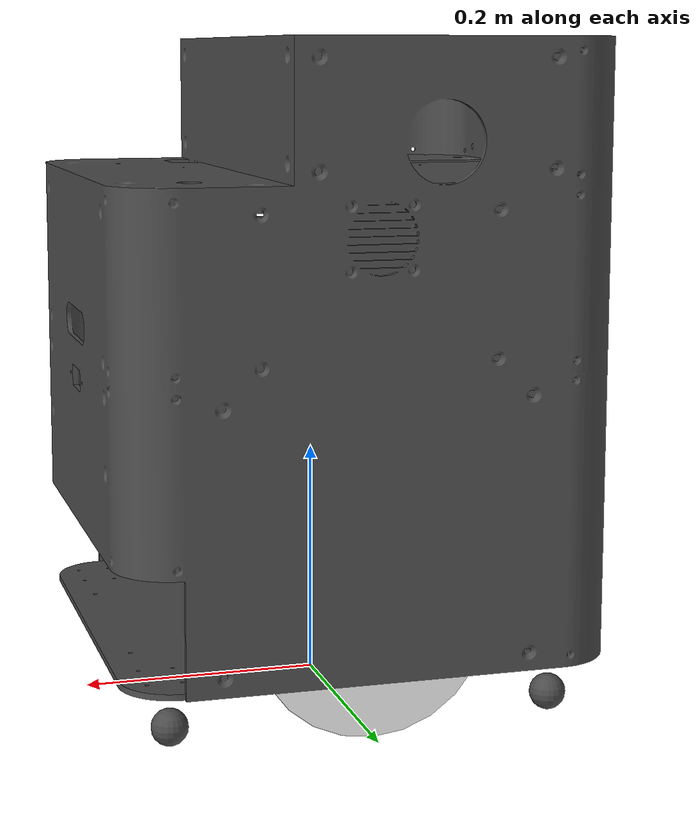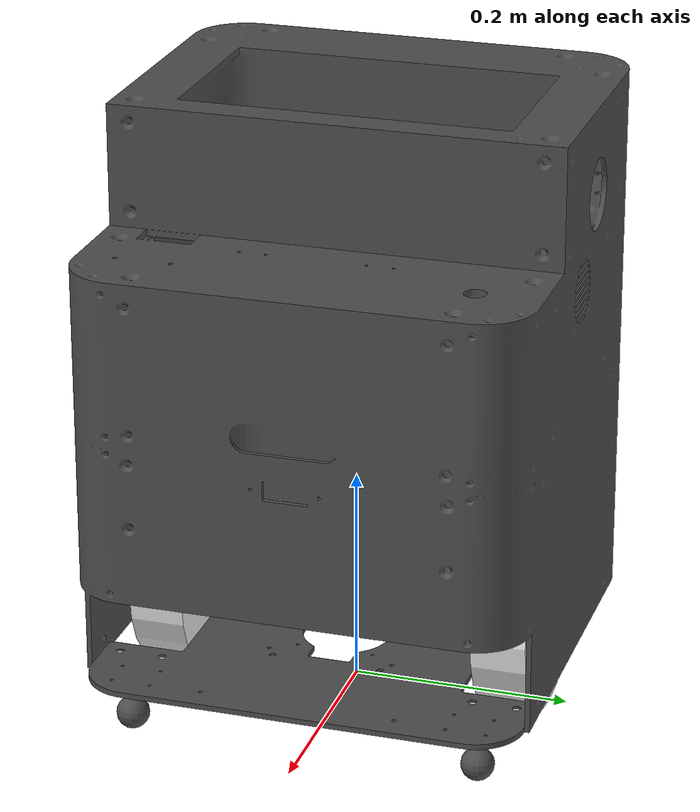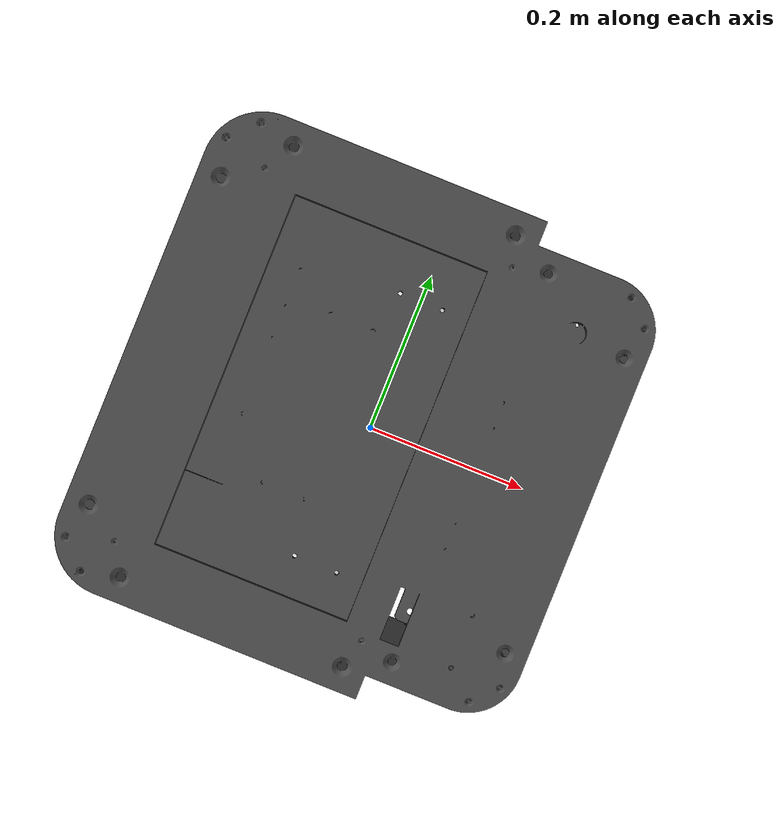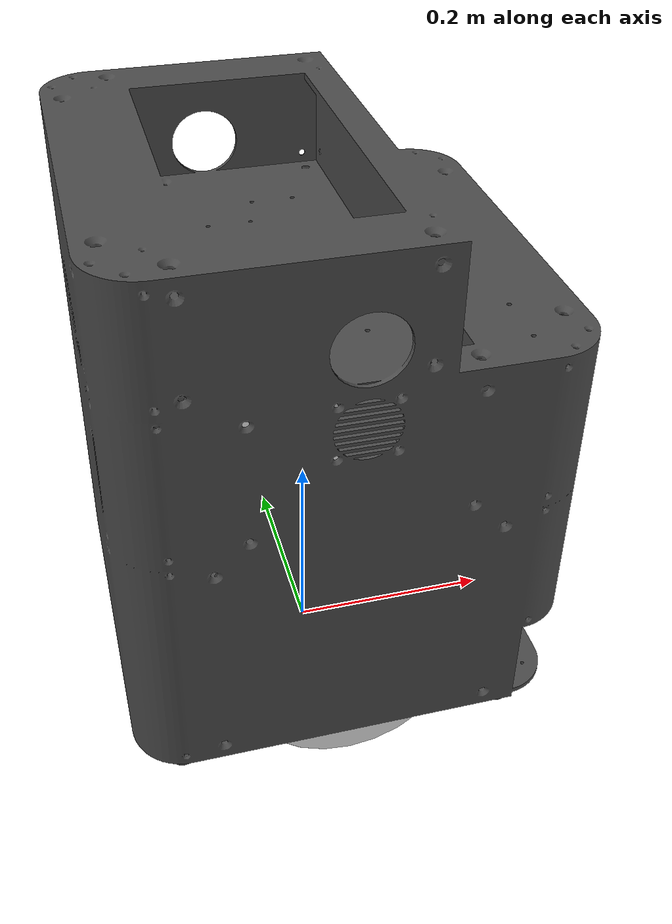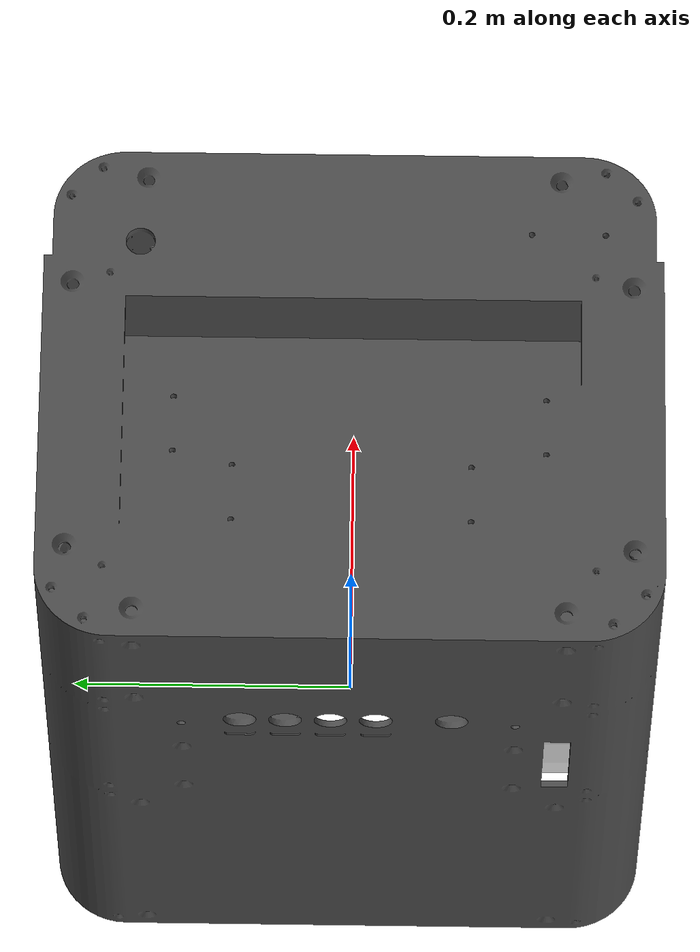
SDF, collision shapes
<sdf version='1.7'>
  <model name='warehouse_bot'>
    <link name='base_footprint'>
      <inertial>
        <pose>0 -0 0.049984 0 -0 0</pose>
        <mass>20.015</mass>
        <inertia>
          <ixx>0.324327</ixx>
          <ixy>-1.46827e-40</ixy>
          <ixz>-8.46214e-25</ixz>
          <iyy>0.324327</iyy>
          <iyz>8.46214e-25</iyz>
          <izz>0.324616</izz>
        </inertia>
      </inertial>
      <collision name='base_footprint_fixed_joint_lump__base_collision_collision'>
        <pose>0 0 0.05 0 -0 0</pose>
        <geometry>
          <mesh>
            <scale>0.01 0.01 0.01</scale>
            <uri>model://warehousebot_simulation/meshes/bot_chassis.stl</uri>
          </mesh>
        </geometry>
      </collision>
      <collision name='base_footprint_fixed_joint_lump__caster_bottom_left_link_collision_1'>
        <pose>-0.16 0.16 0.015 0 -0 0</pose>
        <geometry>
          <sphere>
            <radius>0.015</radius>
          </sphere>
        </geometry>
        <surface>
          <contact>
            <ode>
              <kp>1e+06</kp>
              <kd>100</kd>
              <max_vel>1</max_vel>
              <min_depth>0.005</min_depth>
            </ode>
          </contact>
          <friction>
            <ode>
              <mu>0</mu>
              <mu2>0</mu2>
            </ode>
          </friction>
        </surface>
      </collision>
      <collision name='base_footprint_fixed_joint_lump__caster_bottom_right_link_collision_2'>
        <pose>-0.16 -0.16 0.015 0 -0 0</pose>
        <geometry>
          <sphere>
            <radius>0.015</radius>
          </sphere>
        </geometry>
        <surface>
          <contact>
            <ode>
              <kp>1e+06</kp>
              <kd>100</kd>
              <max_vel>1</max_vel>
              <min_depth>0.005</min_depth>
            </ode>
          </contact>
          <friction>
            <ode>
              <mu>0</mu>
              <mu2>0</mu2>
            </ode>
          </friction>
        </surface>
      </collision>
      <collision name='base_footprint_fixed_joint_lump__caster_top_left_link_collision_3'>
        <pose>0.16 0.16 0.015 0 -0 0</pose>
        <geometry>
          <sphere>
            <radius>0.015</radius>
          </sphere>
        </geometry>
        <surface>
          <contact>
            <ode>
              <kp>1e+06</kp>
              <kd>100</kd>
              <max_vel>1</max_vel>
              <min_depth>0.005</min_depth>
            </ode>
          </contact>
          <friction>
            <ode>
              <mu>0</mu>
              <mu2>0</mu2>
            </ode>
          </friction>
        </surface>
      </collision>
      <collision name='base_footprint_fixed_joint_lump__caster_top_right_link_collision_4'>
        <pose>0.16 -0.16 0.015 0 -0 0</pose>
        <geometry>
          <sphere>
            <radius>0.015</radius>
          </sphere>
        </geometry>
        <surface>
          <contact>
            <ode>
              <kp>1e+06</kp>
              <kd>100</kd>
              <max_vel>1</max_vel>
              <min_depth>0.005</min_depth>
            </ode>
          </contact>
          <friction>
            <ode>
              <mu>0</mu>
              <mu2>0</mu2>
            </ode>
          </friction>
        </surface>
      </collision>
      <visual name='base_footprint_fixed_joint_lump__base_link_visual'>
        <pose>0 0 0.05 0 -0 0</pose>
        <geometry>
          <mesh>
            <scale>0.01 0.01 0.01</scale>
            <uri>model://warehousebot_simulation/meshes/bot_chassis.stl</uri>
          </mesh>
        </geometry>
        <material>
          <script>
            <name>Gazebo/DarkGrey</name>
            <uri>file://media/materials/scripts/gazebo.material</uri>
          </script>
        </material>
      </visual>
      <visual name='base_footprint_fixed_joint_lump__base_laser_visual_1'>
        <pose>0.169 0 0.085856 -3.14119 0 0</pose>
        <geometry>
          <mesh>
            <scale>1 1 1</scale>
            <uri>model://warehousebot_simulation/meshes/sick_tim_571.stl</uri>
          </mesh>
        </geometry>
        <material>
          <script>
            <name>Gazebo/FlatBlack</name>
            <uri>file://media/materials/scripts/gazebo.material</uri>
          </script>
        </material>
      </visual>
      <visual name='base_footprint_fixed_joint_lump__camera_link_visual_2'>
        <pose>0.20555 0 0.3165 1.5708 -0 1.5708</pose>
        <geometry>
          <mesh>
            <scale>1 1 1</scale>
            <uri>model://warehousebot_simulation/meshes/d435.dae</uri>
          </mesh>
        </geometry>
      </visual>
      <visual name='base_footprint_fixed_joint_lump__caster_bottom_left_link_visual_3'>
        <pose>-0.16 0.16 0.015 0 -0 0</pose>
        <geometry>
          <sphere>
            <radius>0.015</radius>
          </sphere>
        </geometry>
        <material>
          <script>
            <name>Gazebo/FlatBlack</name>
            <uri>file://media/materials/scripts/gazebo.material</uri>
          </script>
        </material>
      </visual>
      <visual name='base_footprint_fixed_joint_lump__caster_bottom_right_link_visual_4'>
        <pose>-0.16 -0.16 0.015 0 -0 0</pose>
        <geometry>
          <sphere>
            <radius>0.015</radius>
          </sphere>
        </geometry>
        <material>
          <script>
            <name>Gazebo/FlatBlack</name>
            <uri>file://media/materials/scripts/gazebo.material</uri>
          </script>
        </material>
      </visual>
      <visual name='base_footprint_fixed_joint_lump__caster_top_left_link_visual_5'>
        <pose>0.16 0.16 0.015 0 -0 0</pose>
        <geometry>
          <sphere>
            <radius>0.015</radius>
          </sphere>
        </geometry>
        <material>
          <script>
            <name>Gazebo/FlatBlack</name>
            <uri>file://media/materials/scripts/gazebo.material</uri>
          </script>
        </material>
      </visual>
      <visual name='base_footprint_fixed_joint_lump__caster_top_right_link_visual_6'>
        <pose>0.16 -0.16 0.015 0 -0 0</pose>
        <geometry>
          <sphere>
            <radius>0.015</radius>
          </sphere>
        </geometry>
        <material>
          <script>
            <name>Gazebo/FlatBlack</name>
            <uri>file://media/materials/scripts/gazebo.material</uri>
          </script>
        </material>
      </visual>
      <sensor name='hls_lfcd_lds' type='ray'>
        <always_on>1</always_on>
        <visualize>1</visualize>
        <update_rate>15</update_rate>
        <ray>
          <scan>
            <horizontal>
              <samples>541</samples>
              <resolution>1</resolution>
              <min_angle>-1.57</min_angle>
              <max_angle>1.57</max_angle>
            </horizontal>
          </scan>
          <range>
            <min>0.01</min>
            <max>25</max>
            <resolution>0.005</resolution>
          </range>
          <noise>
            <type>gaussian</type>
            <mean>0</mean>
            <stddev>0.01</stddev>
          </noise>
        </ray>
        <plugin name='bot_laserscan' filename='libgazebo_ros_ray_sensor.so'>
          <ros>
            <remapping>~/out:=scan</remapping>
          </ros>
          <output_type>sensor_msgs/LaserScan</output_type>
          <frame_name>base_laser</frame_name>
        </plugin>
        <pose>0.169 0 0.085856 -3.14119 -0 0</pose>
      </sensor>
      <self_collide>0</self_collide>
      <enable_wind>0</enable_wind>
      <kinematic>0</kinematic>
      <gravity>1</gravity>
      <sensor name='cameraired1' type='camera'>
        <camera name='camera'>
          <horizontal_fov>1.48702</horizontal_fov>
          <image>
            <width>640</width>
            <height>480</height>
            <format>L_INT8</format>
          </image>
          <clip>
            <near>0.1</near>
            <far>100</far>
          </clip>
          <noise>
            <type>gaussian</type>
            <mean>0</mean>
            <stddev>0.05</stddev>
          </noise>
        </camera>
        <always_on>0</always_on>
        <update_rate>10</update_rate>
        <visualize>0</visualize>
        <pose>0.20125 0.0175 0.3165 0 -0 0</pose>
      </sensor>
      <sensor name='cameraired2' type='camera'>
        <camera name='camera'>
          <horizontal_fov>1.48702</horizontal_fov>
          <image>
            <width>640</width>
            <height>480</height>
            <format>L_INT8</format>
          </image>
          <clip>
            <near>0.1</near>
            <far>100</far>
          </clip>
          <noise>
            <type>gaussian</type>
            <mean>0</mean>
            <stddev>0.05</stddev>
          </noise>
        </camera>
        <always_on>0</always_on>
        <update_rate>10</update_rate>
        <visualize>0</visualize>
        <pose>0.20125 0.0175 0.3165 0 -0 0</pose>
      </sensor>
      <sensor name='cameradepth' type='depth'>
        <camera name='camera'>
          <horizontal_fov>1.48702</horizontal_fov>
          <image>
            <width>640</width>
            <height>480</height>
          </image>
          <clip>
            <near>0.1</near>
            <far>100</far>
          </clip>
          <noise>
            <type>gaussian</type>
            <mean>0</mean>
            <stddev>0.1</stddev>
          </noise>
        </camera>
        <always_on>1</always_on>
        <update_rate>10</update_rate>
        <visualize>0</visualize>
        <pose>0.20125 0.0175 0.3165 0 -0 0</pose>
      </sensor>
      <self_collide>0</self_collide>
      <enable_wind>0</enable_wind>
      <kinematic>0</kinematic>
      <gravity>1</gravity>
      <sensor name='cameracolor' type='camera'>
        <camera name='camera'>
          <horizontal_fov>1.21126</horizontal_fov>
          <image>
            <width>640</width>
            <height>480</height>
            <format>RGB_INT8</format>
          </image>
          <clip>
            <near>0.1</near>
            <far>100</far>
          </clip>
          <noise>
            <type>gaussian</type>
            <mean>0</mean>
            <stddev>0.007</stddev>
          </noise>
        </camera>
        <always_on>1</always_on>
        <update_rate>10</update_rate>
        <visualize>1</visualize>
        <pose>0.20125 0.0325 0.3165 0 -0 0</pose>
      </sensor>
      <sensor name='imu_sensor' type='imu'>
        <plugin name='imu_plugin' filename='libgazebo_ros_imu_sensor.so'>
          <ros>
            <remapping>~/out:=imu/data</remapping>
          </ros>
          <initial_orientation_as_reference>0</initial_orientation_as_reference>
        </plugin>
        <always_on>1</always_on>
        <update_rate>100</update_rate>
        <visualize>1</visualize>
        <imu>
          <angular_velocity>
            <x>
              <noise type='gaussian'>
                <mean>0</mean>
                <stddev>0.0002</stddev>
                <bias_mean>7.5e-06</bias_mean>
                <bias_stddev>8e-07</bias_stddev>
              </noise>
            </x>
            <y>
              <noise type='gaussian'>
                <mean>0</mean>
                <stddev>0.0002</stddev>
                <bias_mean>7.5e-06</bias_mean>
                <bias_stddev>8e-07</bias_stddev>
              </noise>
            </y>
            <z>
              <noise type='gaussian'>
                <mean>0</mean>
                <stddev>0.0002</stddev>
                <bias_mean>7.5e-06</bias_mean>
                <bias_stddev>8e-07</bias_stddev>
              </noise>
            </z>
          </angular_velocity>
          <linear_acceleration>
            <x>
              <noise type='gaussian'>
                <mean>0</mean>
                <stddev>0.017</stddev>
                <bias_mean>0.1</bias_mean>
                <bias_stddev>0.001</bias_stddev>
              </noise>
            </x>
            <y>
              <noise type='gaussian'>
                <mean>0</mean>
                <stddev>0.017</stddev>
                <bias_mean>0.1</bias_mean>
                <bias_stddev>0.001</bias_stddev>
              </noise>
            </y>
            <z>
              <noise type='gaussian'>
                <mean>0</mean>
                <stddev>0.017</stddev>
                <bias_mean>0.1</bias_mean>
                <bias_stddev>0.001</bias_stddev>
              </noise>
            </z>
          </linear_acceleration>
        </imu>
        <pose>0.18951 0.01198 0.3216 0 -0 0</pose>
        <frameName>camera_imu_optical_frame</frameName>
      </sensor>
    </link>
    <joint name='wheel_left_joint' type='revolute'>
      <pose relative_to='base_footprint'>0 0.159974 0.0985 -1.57 0 0</pose>
      <parent>base_footprint</parent>
      <child>wheel_left_link</child>
      <axis>
        <xyz>0 0 1</xyz>
        <limit>
          <lower>-1e+16</lower>
          <upper>1e+16</upper>
        </limit>
        <dynamics>
          <spring_reference>0</spring_reference>
          <spring_stiffness>0</spring_stiffness>
        </dynamics>
      </axis>
    </joint>
    <link name='wheel_left_link'>
      <pose relative_to='wheel_left_joint'>0 0 0 0 -0 0</pose>
      <inertial>
        <pose>0 0 0 0 -0 0</pose>
        <mass>1</mass>
        <inertia>
          <ixx>0.00282485</ixx>
          <ixy>-1.41127e-06</ixy>
          <ixz>1.32139e-08</ixz>
          <iyy>0.00283002</iyy>
          <iyz>2.09836e-07</iyz>
          <izz>0.00515906</izz>
        </inertia>
      </inertial>
      <collision name='wheel_left_link_collision'>
        <pose>0 0 0 0 -0 0</pose>
        <geometry>
          <cylinder>
            <length>0.05</length>
            <radius>0.0985</radius>
          </cylinder>
        </geometry>
        <surface>
          <contact>
            <ode>
              <kp>500000</kp>
              <kd>1</kd>
              <max_vel>0.1</max_vel>
              <min_depth>0.005</min_depth>
            </ode>
          </contact>
          <friction>
            <ode>
              <mu>2000</mu>
              <mu2>2000</mu2>
            </ode>
          </friction>
        </surface>
      </collision>
      <visual name='wheel_left_link_visual'>
        <pose>0 0 0 0 -0 0</pose>
        <geometry>
          <mesh>
            <scale>0.01 0.01 0.01</scale>
            <uri>model://warehousebot_simulation/meshes/left_wheel.stl</uri>
          </mesh>
        </geometry>
        <material>
          <script>
            <name>Gazebo/White</name>
            <uri>file://media/materials/scripts/gazebo.material</uri>
          </script>
        </material>
      </visual>
    </link>
    <joint name='wheel_right_joint' type='revolute'>
      <pose relative_to='base_footprint'>0 -0.159974 0.0985 -1.57 0 0</pose>
      <parent>base_footprint</parent>
      <child>wheel_right_link</child>
      <axis>
        <xyz>0 0 1</xyz>
        <limit>
          <lower>-1e+16</lower>
          <upper>1e+16</upper>
        </limit>
        <dynamics>
          <spring_reference>0</spring_reference>
          <spring_stiffness>0</spring_stiffness>
        </dynamics>
      </axis>
    </joint>
    <link name='wheel_right_link'>
      <pose relative_to='wheel_right_joint'>0 0 0 0 -0 0</pose>
      <inertial>
        <pose>0 0 0 0 -0 0</pose>
        <mass>1</mass>
        <inertia>
          <ixx>0.00282485</ixx>
          <ixy>-1.41127e-06</ixy>
          <ixz>1.32139e-08</ixz>
          <iyy>0.00283002</iyy>
          <iyz>2.09836e-07</iyz>
          <izz>0.00515906</izz>
        </inertia>
      </inertial>
      <collision name='wheel_right_link_collision'>
        <pose>0 0 0 0 -0 0</pose>
        <geometry>
          <cylinder>
            <length>0.05</length>
            <radius>0.0985</radius>
          </cylinder>
        </geometry>
        <surface>
          <contact>
            <ode>
              <kp>500000</kp>
              <kd>1</kd>
              <max_vel>0.1</max_vel>
              <min_depth>0.005</min_depth>
            </ode>
          </contact>
          <friction>
            <ode>
              <mu>2000</mu>
              <mu2>2000</mu2>
            </ode>
          </friction>
        </surface>
      </collision>
      <visual name='wheel_right_link_visual'>
        <pose>0 0 0 0 -0 0</pose>
        <geometry>
          <mesh>
            <scale>0.01 0.01 0.01</scale>
            <uri>model://warehousebot_simulation/meshes/right_wheel.stl</uri>
          </mesh>
        </geometry>
        <material>
          <script>
            <name>Gazebo/White</name>
            <uri>file://media/materials/scripts/gazebo.material</uri>
          </script>
        </material>
      </visual>
    </link>
    <plugin name='bot_motor_controller' filename='libgazebo_ros_diff_drive.so'>
      <update_rate>100</update_rate>
      <left_joint>wheel_left_joint</left_joint>
      <right_joint>wheel_right_joint</right_joint>
      <wheel_separation>0.319948</wheel_separation>
      <wheel_diameter>0.197</wheel_diameter>
      <max_wheel_torque>20</max_wheel_torque>
      <max_wheel_acceleration>8.767</max_wheel_acceleration>
      <command_topic>cmd_vel</command_topic>
      <publish_odom>1</publish_odom>
      <publish_odom_tf>0</publish_odom_tf>
      <publish_wheel_tf>0</publish_wheel_tf>
      <odometry_topic>odom</odometry_topic>
      <odometry_frame>odom</odometry_frame>
      <robot_base_frame>base_footprint</robot_base_frame>
    </plugin>
    <plugin name='warehousebot_joint_state' filename='libgazebo_ros_joint_state_publisher.so'>
      <ros>
        <remapping>~/out:=joint_states</remapping>
      </ros>
      <update_rate>100</update_rate>
      <joint_name>wheel_left_joint</joint_name>
      <joint_name>wheel_right_joint</joint_name>
    </plugin>
    <static>0</static>
    <plugin name='camera' filename='libwarehousebot_simulation.so'>
      <prefix>camera</prefix>
      <depthUpdateRate>10.0</depthUpdateRate>
      <colorUpdateRate>10.0</colorUpdateRate>
      <infraredUpdateRate>10.0</infraredUpdateRate>
      <depthTopicName>depth/image_raw</depthTopicName>
      <depthCameraInfoTopicName>depth/camera_info</depthCameraInfoTopicName>
      <colorTopicName>image_rgb</colorTopicName>
      <colorCameraInfoTopicName>color_camera_info</colorCameraInfoTopicName>
      <infrared1TopicName>infra1/image_raw</infrared1TopicName>
      <infrared1CameraInfoTopicName>infra1/camera_info</infrared1CameraInfoTopicName>
      <infrared2TopicName>infra2/image_raw</infrared2TopicName>
      <infrared2CameraInfoTopicName>infra2/camera_info</infrared2CameraInfoTopicName>
      <colorOpticalframeName>camera_color_optical_frame</colorOpticalframeName>
      <depthOpticalframeName>camera_depth_optical_frame</depthOpticalframeName>
      <infrared1OpticalframeName>camera_left_ir_optical_frame</infrared1OpticalframeName>
      <infrared2OpticalframeName>camera_right_ir_optical_frame</infrared2OpticalframeName>
      <rangeMinDepth>2.5</rangeMinDepth>
      <rangeMaxDepth>1</rangeMaxDepth>
      <pointCloud>1</pointCloud>
      <pointCloudTopicName>/camera/depth/color/points</pointCloudTopicName>
      <pointCloudCutoff>0.5</pointCloudCutoff>
      <pointCloudCutoffMax>2.5</pointCloudCutoffMax>
    </plugin>
  </model>
</sdf>
